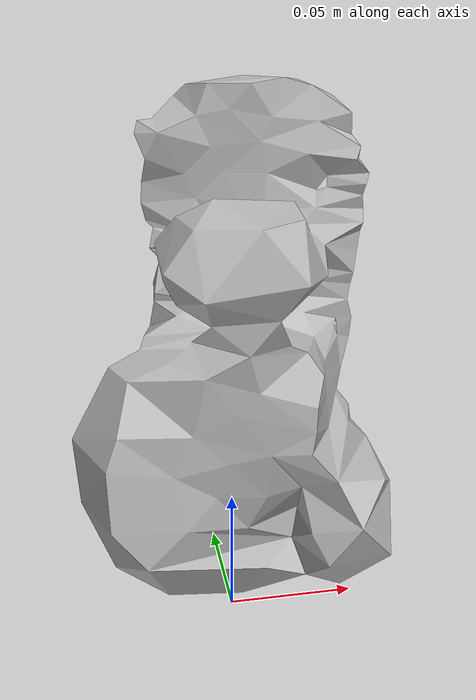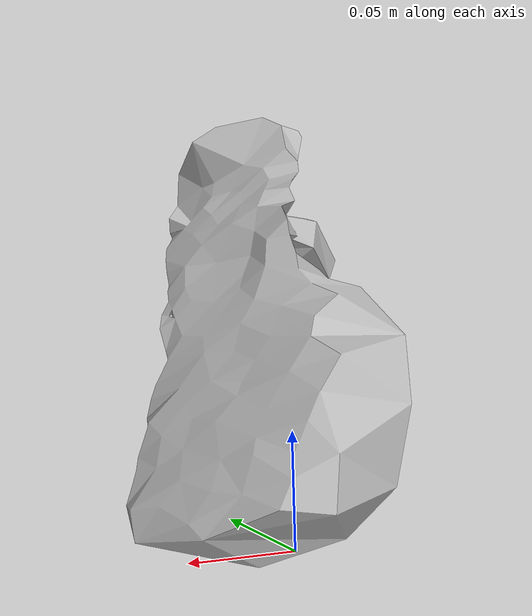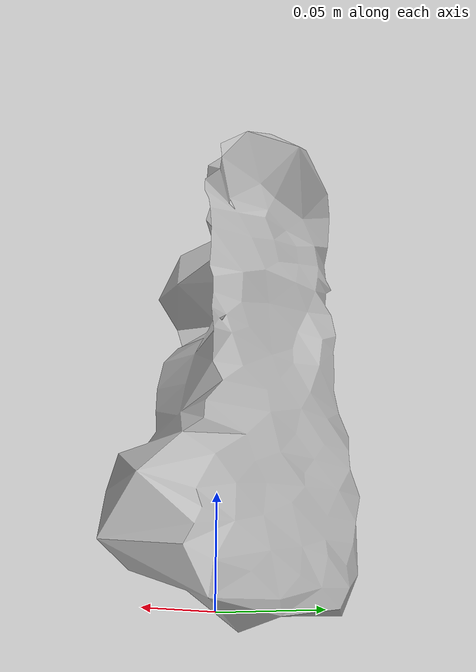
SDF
<?xml version="1.0" ?>
<sdf version="1.4">
  <model name="mommys_helper_outlet_plugs">
    <link name="mommys_helper_outlet_plugs_link">
      <inertial>
        <pose>0 0 0 0 0 0</pose>
        <mass>0.08</mass>
      </inertial>

      <visual name="mommys_helper_outlet_plugs_visual">
        <pose>0 0 0 0 0 0</pose>
        <material>
          <script>
            <uri>model://mommys_helper_outlet_plugs/materials/scripts</uri>
            <uri>model://mommys_helper_outlet_plugs/materials/textures</uri>
            <name>mommys_helper_outlet_plugs</name>
          </script>
        </material>
        <geometry>
          <mesh>
            <uri>model://mommys_helper_outlet_plugs/meshes/mommys_helper_outlet_plugs.dae</uri>
          </mesh>
        </geometry>
      </visual>

      <collision name="mommys_helper_outlet_plugs_collision">
        <pose>0 0 0 0 0 0</pose>
        <geometry>
          <mesh>
            <uri>model://mommys_helper_outlet_plugs/meshes/mommys_helper_outlet_plugs.dae</uri>
          </mesh>
        </geometry>
        <surface>
          <friction>
            <ode>
              <mu>0.8</mu>
              <mu2>0.8</mu2>
            </ode>
          </friction>
        </surface>
      </collision>

    </link>
  </model>
</sdf>
